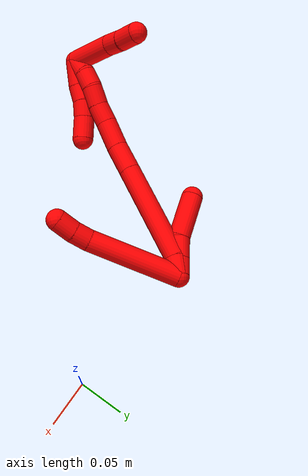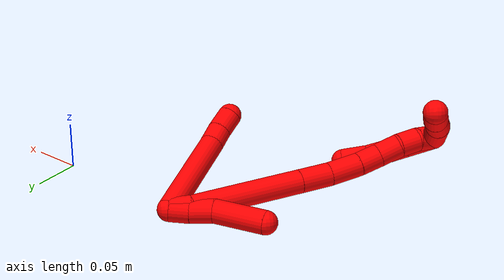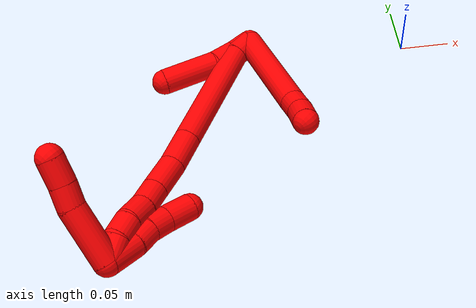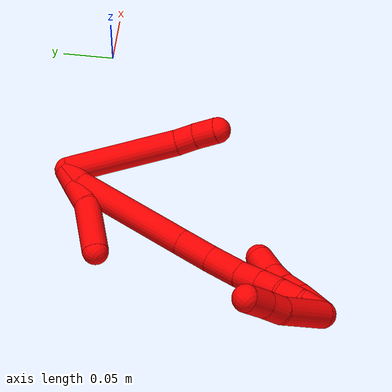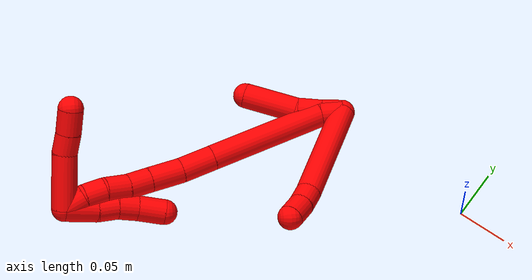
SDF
<sdf version="1.7">
 <world name="default">
  <model name="2">
   <static>0</static>
   <link name="2">
    <collision name="collision-cylinder-e_1_2_8">
     <pose>-0.044066 -0.01993 0.023816 0.696808 -0.956901 -0.372399</pose>
     <geometry><cylinder><radius>0.0125</radius><length>0.107818</length></cylinder></geometry>
     <surface>
      <friction><ode><mu>1.16</mu><mu2>1.16</mu2><slip1>0</slip1><slip2>0</slip2></ode></friction>
      <contact><ode><kp>1e+06</kp><kd>1</kd><max_vel>0</max_vel><min_depth>0.001</min_depth></ode></contact>
     </surface>
    </collision>
    <visual name="visual-cylinder-e_1_2_8">
     <pose>-0.044066 -0.01993 0.023816 0.696808 -0.956901 -0.372399</pose>
     <geometry><cylinder><radius>0.0125</radius><length>0.107818</length></cylinder></geometry>
     <material><ambient>1 0 0 1</ambient></material>
    </visual>
    <collision name="collision-cylinder-e_2_8_9">
     <pose>-0.095126 -0.0452 0.052381 0.8438 -0.774656 -0.362194</pose>
     <geometry><cylinder><radius>0.0125</radius><length>0.02</length></cylinder></geometry>
     <surface>
      <friction><ode><mu>1.16</mu><mu2>1.16</mu2><slip1>0</slip1><slip2>0</slip2></ode></friction>
      <contact><ode><kp>1e+06</kp><kd>1</kd><max_vel>0</max_vel><min_depth>0.001</min_depth></ode></contact>
     </surface>
    </collision>
    <visual name="visual-cylinder-e_2_8_9">
     <pose>-0.095126 -0.0452 0.052381 0.8438 -0.774656 -0.362194</pose>
     <geometry><cylinder><radius>0.0125</radius><length>0.02</length></cylinder></geometry>
     <material><ambient>1 0 0 1</ambient></material>
    </visual>
    <collision name="collision-cylinder-e_3_9_6">
     <pose>-0.108833 -0.056737 0.06342 0.778076 -0.650006 -0.274516</pose>
     <geometry><cylinder><radius>0.0125</radius><length>0.022182</length></cylinder></geometry>
     <surface>
      <friction><ode><mu>1.16</mu><mu2>1.16</mu2><slip1>0</slip1><slip2>0</slip2></ode></friction>
      <contact><ode><kp>1e+06</kp><kd>1</kd><max_vel>0</max_vel><min_depth>0.001</min_depth></ode></contact>
     </surface>
    </collision>
    <visual name="visual-cylinder-e_3_9_6">
     <pose>-0.108833 -0.056737 0.06342 0.778076 -0.650006 -0.274516</pose>
     <geometry><cylinder><radius>0.0125</radius><length>0.022182</length></cylinder></geometry>
     <material><ambient>1 0 0 1</ambient></material>
    </visual>
    <collision name="collision-cylinder-e_1_2_10">
     <pose>0.001372 0.001295 0.010279 -0.125374 0.131711 -0.008279</pose>
     <geometry><cylinder><radius>0.0125</radius><length>0.020901</length></cylinder></geometry>
     <surface>
      <friction><ode><mu>1.16</mu><mu2>1.16</mu2><slip1>0</slip1><slip2>0</slip2></ode></friction>
      <contact><ode><kp>1e+06</kp><kd>1</kd><max_vel>0</max_vel><min_depth>0.001</min_depth></ode></contact>
     </surface>
    </collision>
    <visual name="visual-cylinder-e_1_2_10">
     <pose>0.001372 0.001295 0.010279 -0.125374 0.131711 -0.008279</pose>
     <geometry><cylinder><radius>0.0125</radius><length>0.020901</length></cylinder></geometry>
     <material><ambient>1 0 0 1</ambient></material>
    </visual>
    <collision name="collision-cylinder-e_2_10_11">
     <pose>0.004815 0.002696 0.032764 -0.0086 0.167995 -0.000724</pose>
     <geometry><cylinder><radius>0.0125</radius><length>0.024764</length></cylinder></geometry>
     <surface>
      <friction><ode><mu>1.16</mu><mu2>1.16</mu2><slip1>0</slip1><slip2>0</slip2></ode></friction>
      <contact><ode><kp>1e+06</kp><kd>1</kd><max_vel>0</max_vel><min_depth>0.001</min_depth></ode></contact>
     </surface>
    </collision>
    <visual name="visual-cylinder-e_2_10_11">
     <pose>0.004815 0.002696 0.032764 -0.0086 0.167995 -0.000724</pose>
     <geometry><cylinder><radius>0.0125</radius><length>0.024764</length></cylinder></geometry>
     <material><ambient>1 0 0 1</ambient></material>
    </visual>
    <collision name="collision-cylinder-e_3_11_5">
     <pose>0.017781 0.007124 0.06948 -0.174596 0.412663 -0.036634</pose>
     <geometry><cylinder><radius>0.0125</radius><length>0.054335</length></cylinder></geometry>
     <surface>
      <friction><ode><mu>1.16</mu><mu2>1.16</mu2><slip1>0</slip1><slip2>0</slip2></ode></friction>
      <contact><ode><kp>1e+06</kp><kd>1</kd><max_vel>0</max_vel><min_depth>0.001</min_depth></ode></contact>
     </surface>
    </collision>
    <visual name="visual-cylinder-e_3_11_5">
     <pose>0.017781 0.007124 0.06948 -0.174596 0.412663 -0.036634</pose>
     <geometry><cylinder><radius>0.0125</radius><length>0.054335</length></cylinder></geometry>
     <material><ambient>1 0 0 1</ambient></material>
    </visual>
    <collision name="collision-cylinder-e_1_2_12">
     <pose>-0.00025 -0.000142 0.011388 0.01249 -0.021928 -0.000137</pose>
     <geometry><cylinder><radius>0.0125</radius><length>0.022784</length></cylinder></geometry>
     <surface>
      <friction><ode><mu>1.16</mu><mu2>1.16</mu2><slip1>0</slip1><slip2>0</slip2></ode></friction>
      <contact><ode><kp>1e+06</kp><kd>1</kd><max_vel>0</max_vel><min_depth>0.001</min_depth></ode></contact>
     </surface>
    </collision>
    <visual name="visual-cylinder-e_1_2_12">
     <pose>-0.00025 -0.000142 0.011388 0.01249 -0.021928 -0.000137</pose>
     <geometry><cylinder><radius>0.0125</radius><length>0.022784</length></cylinder></geometry>
     <material><ambient>1 0 0 1</ambient></material>
    </visual>
    <collision name="collision-cylinder-e_2_12_13">
     <pose>-0.018934 -0.003849 0.07879 0.063547 -0.317337 -0.010172</pose>
     <geometry><cylinder><radius>0.0125</radius><length>0.118152</length></cylinder></geometry>
     <surface>
      <friction><ode><mu>1.16</mu><mu2>1.16</mu2><slip1>0</slip1><slip2>0</slip2></ode></friction>
      <contact><ode><kp>1e+06</kp><kd>1</kd><max_vel>0</max_vel><min_depth>0.001</min_depth></ode></contact>
     </surface>
    </collision>
    <visual name="visual-cylinder-e_2_12_13">
     <pose>-0.018934 -0.003849 0.07879 0.063547 -0.317337 -0.010172</pose>
     <geometry><cylinder><radius>0.0125</radius><length>0.118152</length></cylinder></geometry>
     <material><ambient>1 0 0 1</ambient></material>
    </visual>
    <collision name="collision-cylinder-e_3_13_14">
     <pose>-0.042689 -0.008459 0.150837 0.065127 -0.319794 -0.010507</pose>
     <geometry><cylinder><radius>0.0125</radius><length>0.033853</length></cylinder></geometry>
     <surface>
      <friction><ode><mu>1.16</mu><mu2>1.16</mu2><slip1>0</slip1><slip2>0</slip2></ode></friction>
      <contact><ode><kp>1e+06</kp><kd>1</kd><max_vel>0</max_vel><min_depth>0.001</min_depth></ode></contact>
     </surface>
    </collision>
    <visual name="visual-cylinder-e_3_13_14">
     <pose>-0.042689 -0.008459 0.150837 0.065127 -0.319794 -0.010507</pose>
     <geometry><cylinder><radius>0.0125</radius><length>0.033853</length></cylinder></geometry>
     <material><ambient>1 0 0 1</ambient></material>
    </visual>
    <collision name="collision-cylinder-e_4_14_15">
     <pose>-0.052159 -0.012456 0.183019 0.180764 -0.247564 -0.022551</pose>
     <geometry><cylinder><radius>0.0125</radius><length>0.033863</length></cylinder></geometry>
     <surface>
      <friction><ode><mu>1.16</mu><mu2>1.16</mu2><slip1>0</slip1><slip2>0</slip2></ode></friction>
      <contact><ode><kp>1e+06</kp><kd>1</kd><max_vel>0</max_vel><min_depth>0.001</min_depth></ode></contact>
     </surface>
    </collision>
    <visual name="visual-cylinder-e_4_14_15">
     <pose>-0.052159 -0.012456 0.183019 0.180764 -0.247564 -0.022551</pose>
     <geometry><cylinder><radius>0.0125</radius><length>0.033863</length></cylinder></geometry>
     <material><ambient>1 0 0 1</ambient></material>
    </visual>
    <collision name="collision-cylinder-e_5_15_16">
     <pose>-0.059516 -0.018493 0.210066 0.275929 -0.275995 -0.038561</pose>
     <geometry><cylinder><radius>0.0125</radius><length>0.023546</length></cylinder></geometry>
     <surface>
      <friction><ode><mu>1.16</mu><mu2>1.16</mu2><slip1>0</slip1><slip2>0</slip2></ode></friction>
      <contact><ode><kp>1e+06</kp><kd>1</kd><max_vel>0</max_vel><min_depth>0.001</min_depth></ode></contact>
     </surface>
    </collision>
    <visual name="visual-cylinder-e_5_15_16">
     <pose>-0.059516 -0.018493 0.210066 0.275929 -0.275995 -0.038561</pose>
     <geometry><cylinder><radius>0.0125</radius><length>0.023546</length></cylinder></geometry>
     <material><ambient>1 0 0 1</ambient></material>
    </visual>
    <collision name="collision-cylinder-e_6_16_17">
     <pose>-0.064328 -0.025726 0.232201 0.35358 -0.133137 -0.02382</pose>
     <geometry><cylinder><radius>0.0125</radius><length>0.024169</length></cylinder></geometry>
     <surface>
      <friction><ode><mu>1.16</mu><mu2>1.16</mu2><slip1>0</slip1><slip2>0</slip2></ode></friction>
      <contact><ode><kp>1e+06</kp><kd>1</kd><max_vel>0</max_vel><min_depth>0.001</min_depth></ode></contact>
     </surface>
    </collision>
    <visual name="visual-cylinder-e_6_16_17">
     <pose>-0.064328 -0.025726 0.232201 0.35358 -0.133137 -0.02382</pose>
     <geometry><cylinder><radius>0.0125</radius><length>0.024169</length></cylinder></geometry>
     <material><ambient>1 0 0 1</ambient></material>
    </visual>
    <collision name="collision-cylinder-e_7_17_18">
     <pose>-0.068904 -0.031587 0.253486 0.168909 -0.28363 -0.024172</pose>
     <geometry><cylinder><radius>0.0125</radius><length>0.021235</length></cylinder></geometry>
     <surface>
      <friction><ode><mu>1.16</mu><mu2>1.16</mu2><slip1>0</slip1><slip2>0</slip2></ode></friction>
      <contact><ode><kp>1e+06</kp><kd>1</kd><max_vel>0</max_vel><min_depth>0.001</min_depth></ode></contact>
     </surface>
    </collision>
    <visual name="visual-cylinder-e_7_17_18">
     <pose>-0.068904 -0.031587 0.253486 0.168909 -0.28363 -0.024172</pose>
     <geometry><cylinder><radius>0.0125</radius><length>0.021235</length></cylinder></geometry>
     <material><ambient>1 0 0 1</ambient></material>
    </visual>
    <collision name="collision-cylinder-e_8_18_1">
     <pose>-0.076697 -0.032578 0.273616 -0.071572 -0.44518 0.016206</pose>
     <geometry><cylinder><radius>0.0125</radius><length>0.022399</length></cylinder></geometry>
     <surface>
      <friction><ode><mu>1.16</mu><mu2>1.16</mu2><slip1>0</slip1><slip2>0</slip2></ode></friction>
      <contact><ode><kp>1e+06</kp><kd>1</kd><max_vel>0</max_vel><min_depth>0.001</min_depth></ode></contact>
     </surface>
    </collision>
    <visual name="visual-cylinder-e_8_18_1">
     <pose>-0.076697 -0.032578 0.273616 -0.071572 -0.44518 0.016206</pose>
     <geometry><cylinder><radius>0.0125</radius><length>0.022399</length></cylinder></geometry>
     <material><ambient>1 0 0 1</ambient></material>
    </visual>
    <collision name="collision-cylinder-e_1_1_19">
     <pose>-0.082352 -0.027843 0.268068 -2.89031 -0.051494 0.402271</pose>
     <geometry><cylinder><radius>0.0125</radius><length>0.032316</length></cylinder></geometry>
     <surface>
      <friction><ode><mu>1.16</mu><mu2>1.16</mu2><slip1>0</slip1><slip2>0</slip2></ode></friction>
      <contact><ode><kp>1e+06</kp><kd>1</kd><max_vel>0</max_vel><min_depth>0.001</min_depth></ode></contact>
     </surface>
    </collision>
    <visual name="visual-cylinder-e_1_1_19">
     <pose>-0.082352 -0.027843 0.268068 -2.89031 -0.051494 0.402271</pose>
     <geometry><cylinder><radius>0.0125</radius><length>0.032316</length></cylinder></geometry>
     <material><ambient>1 0 0 1</ambient></material>
    </visual>
    <collision name="collision-cylinder-e_2_19_20">
     <pose>-0.082124 -0.021795 0.242559 -2.93836 0.104684 -0.949241</pose>
     <geometry><cylinder><radius>0.0125</radius><length>0.020284</length></cylinder></geometry>
     <surface>
      <friction><ode><mu>1.16</mu><mu2>1.16</mu2><slip1>0</slip1><slip2>0</slip2></ode></friction>
      <contact><ode><kp>1e+06</kp><kd>1</kd><max_vel>0</max_vel><min_depth>0.001</min_depth></ode></contact>
     </surface>
    </collision>
    <visual name="visual-cylinder-e_2_19_20">
     <pose>-0.082124 -0.021795 0.242559 -2.93836 0.104684 -0.949241</pose>
     <geometry><cylinder><radius>0.0125</radius><length>0.020284</length></cylinder></geometry>
     <material><ambient>1 0 0 1</ambient></material>
    </visual>
    <collision name="collision-cylinder-e_3_20_21">
     <pose>-0.082161 -0.0173 0.222932 -2.89448 -0.108677 0.825628</pose>
     <geometry><cylinder><radius>0.0125</radius><length>0.020228</length></cylinder></geometry>
     <surface>
      <friction><ode><mu>1.16</mu><mu2>1.16</mu2><slip1>0</slip1><slip2>0</slip2></ode></friction>
      <contact><ode><kp>1e+06</kp><kd>1</kd><max_vel>0</max_vel><min_depth>0.001</min_depth></ode></contact>
     </surface>
    </collision>
    <visual name="visual-cylinder-e_3_20_21">
     <pose>-0.082161 -0.0173 0.222932 -2.89448 -0.108677 0.825628</pose>
     <geometry><cylinder><radius>0.0125</radius><length>0.020228</length></cylinder></geometry>
     <material><ambient>1 0 0 1</ambient></material>
    </visual>
    <collision name="collision-cylinder-e_4_21_4">
     <pose>-0.085991 -0.012858 0.200023 -2.99205 -0.202551 1.87115</pose>
     <geometry><cylinder><radius>0.0125</radius><length>0.027172</length></cylinder></geometry>
     <surface>
      <friction><ode><mu>1.16</mu><mu2>1.16</mu2><slip1>0</slip1><slip2>0</slip2></ode></friction>
      <contact><ode><kp>1e+06</kp><kd>1</kd><max_vel>0</max_vel><min_depth>0.001</min_depth></ode></contact>
     </surface>
    </collision>
    <visual name="visual-cylinder-e_4_21_4">
     <pose>-0.085991 -0.012858 0.200023 -2.99205 -0.202551 1.87115</pose>
     <geometry><cylinder><radius>0.0125</radius><length>0.027172</length></cylinder></geometry>
     <material><ambient>1 0 0 1</ambient></material>
    </visual>
    <collision name="collision-cylinder-e_1_1_22">
     <pose>-0.057112 -0.044236 0.281192 1.77052 1.09323 1.27926</pose>
     <geometry><cylinder><radius>0.0125</radius><length>0.054966</length></cylinder></geometry>
     <surface>
      <friction><ode><mu>1.16</mu><mu2>1.16</mu2><slip1>0</slip1><slip2>0</slip2></ode></friction>
      <contact><ode><kp>1e+06</kp><kd>1</kd><max_vel>0</max_vel><min_depth>0.001</min_depth></ode></contact>
     </surface>
    </collision>
    <visual name="visual-cylinder-e_1_1_22">
     <pose>-0.057112 -0.044236 0.281192 1.77052 1.09323 1.27926</pose>
     <geometry><cylinder><radius>0.0125</radius><length>0.054966</length></cylinder></geometry>
     <material><ambient>1 0 0 1</ambient></material>
    </visual>
    <collision name="collision-cylinder-e_2_22_23">
     <pose>-0.024392 -0.062213 0.27601 2.01666 0.929653 1.34398</pose>
     <geometry><cylinder><radius>0.0125</radius><length>0.020744</length></cylinder></geometry>
     <surface>
      <friction><ode><mu>1.16</mu><mu2>1.16</mu2><slip1>0</slip1><slip2>0</slip2></ode></friction>
      <contact><ode><kp>1e+06</kp><kd>1</kd><max_vel>0</max_vel><min_depth>0.001</min_depth></ode></contact>
     </surface>
    </collision>
    <visual name="visual-cylinder-e_2_22_23">
     <pose>-0.024392 -0.062213 0.27601 2.01666 0.929653 1.34398</pose>
     <geometry><cylinder><radius>0.0125</radius><length>0.020744</length></cylinder></geometry>
     <material><ambient>1 0 0 1</ambient></material>
    </visual>
    <collision name="collision-cylinder-e_3_23_3">
     <pose>-0.006132 -0.074462 0.271258 1.87346 0.959765 1.23184</pose>
     <geometry><cylinder><radius>0.0125</radius><length>0.02429</length></cylinder></geometry>
     <surface>
      <friction><ode><mu>1.16</mu><mu2>1.16</mu2><slip1>0</slip1><slip2>0</slip2></ode></friction>
      <contact><ode><kp>1e+06</kp><kd>1</kd><max_vel>0</max_vel><min_depth>0.001</min_depth></ode></contact>
     </surface>
    </collision>
    <visual name="visual-cylinder-e_3_23_3">
     <pose>-0.006132 -0.074462 0.271258 1.87346 0.959765 1.23184</pose>
     <geometry><cylinder><radius>0.0125</radius><length>0.02429</length></cylinder></geometry>
     <material><ambient>1 0 0 1</ambient></material>
    </visual>
    <collision name="collision-sphere-3">
     <pose>0.003815 -0.081113 0.269181 0 -0 0</pose>
     <geometry><sphere><radius>0.0125</radius></sphere></geometry>
     <surface>
      <friction><ode><mu>1.16</mu><mu2>1.16</mu2><slip1>0</slip1><slip2>0</slip2></ode></friction>
      <contact><ode><kp>1e+06</kp><kd>1</kd><max_vel>0</max_vel><min_depth>0.001</min_depth></ode></contact>
     </surface>
    </collision>
    <visual name="visual-sphere-3">
     <pose>0.003815 -0.081113 0.269181 0 -0 0</pose>
     <geometry><sphere><radius>0.0125</radius></sphere></geometry>
     <material><ambient>1 0 0 1</ambient></material>
    </visual>
    <collision name="collision-sphere-23">
     <pose>-0.01608 -0.06781 0.273335 0 -0 0</pose>
     <geometry><sphere><radius>0.0125</radius></sphere></geometry>
     <surface>
      <friction><ode><mu>1.16</mu><mu2>1.16</mu2><slip1>0</slip1><slip2>0</slip2></ode></friction>
      <contact><ode><kp>1e+06</kp><kd>1</kd><max_vel>0</max_vel><min_depth>0.001</min_depth></ode></contact>
     </surface>
    </collision>
    <visual name="visual-sphere-23">
     <pose>-0.01608 -0.06781 0.273335 0 -0 0</pose>
     <geometry><sphere><radius>0.0125</radius></sphere></geometry>
     <material><ambient>1 0 0 1</ambient></material>
    </visual>
    <collision name="collision-sphere-22">
     <pose>-0.032704 -0.056616 0.278685 0 -0 0</pose>
     <geometry><sphere><radius>0.0125</radius></sphere></geometry>
     <surface>
      <friction><ode><mu>1.16</mu><mu2>1.16</mu2><slip1>0</slip1><slip2>0</slip2></ode></friction>
      <contact><ode><kp>1e+06</kp><kd>1</kd><max_vel>0</max_vel><min_depth>0.001</min_depth></ode></contact>
     </surface>
    </collision>
    <visual name="visual-sphere-22">
     <pose>-0.032704 -0.056616 0.278685 0 -0 0</pose>
     <geometry><sphere><radius>0.0125</radius></sphere></geometry>
     <material><ambient>1 0 0 1</ambient></material>
    </visual>
    <collision name="collision-sphere-4">
     <pose>-0.088724 -0.010875 0.186863 0 -0 0</pose>
     <geometry><sphere><radius>0.0125</radius></sphere></geometry>
     <surface>
      <friction><ode><mu>1.16</mu><mu2>1.16</mu2><slip1>0</slip1><slip2>0</slip2></ode></friction>
      <contact><ode><kp>1e+06</kp><kd>1</kd><max_vel>0</max_vel><min_depth>0.001</min_depth></ode></contact>
     </surface>
    </collision>
    <visual name="visual-sphere-4">
     <pose>-0.088724 -0.010875 0.186863 0 -0 0</pose>
     <geometry><sphere><radius>0.0125</radius></sphere></geometry>
     <material><ambient>1 0 0 1</ambient></material>
    </visual>
    <collision name="collision-sphere-21">
     <pose>-0.083258 -0.01484 0.213183 0 -0 0</pose>
     <geometry><sphere><radius>0.0125</radius></sphere></geometry>
     <surface>
      <friction><ode><mu>1.16</mu><mu2>1.16</mu2><slip1>0</slip1><slip2>0</slip2></ode></friction>
      <contact><ode><kp>1e+06</kp><kd>1</kd><max_vel>0</max_vel><min_depth>0.001</min_depth></ode></contact>
     </surface>
    </collision>
    <visual name="visual-sphere-21">
     <pose>-0.083258 -0.01484 0.213183 0 -0 0</pose>
     <geometry><sphere><radius>0.0125</radius></sphere></geometry>
     <material><ambient>1 0 0 1</ambient></material>
    </visual>
    <collision name="collision-sphere-20">
     <pose>-0.081064 -0.019759 0.232681 0 -0 0</pose>
     <geometry><sphere><radius>0.0125</radius></sphere></geometry>
     <surface>
      <friction><ode><mu>1.16</mu><mu2>1.16</mu2><slip1>0</slip1><slip2>0</slip2></ode></friction>
      <contact><ode><kp>1e+06</kp><kd>1</kd><max_vel>0</max_vel><min_depth>0.001</min_depth></ode></contact>
     </surface>
    </collision>
    <visual name="visual-sphere-20">
     <pose>-0.081064 -0.019759 0.232681 0 -0 0</pose>
     <geometry><sphere><radius>0.0125</radius></sphere></geometry>
     <material><ambient>1 0 0 1</ambient></material>
    </visual>
    <collision name="collision-sphere-11">
     <pose>0.006886 0.002801 0.044972 0 -0 0</pose>
     <geometry><sphere><radius>0.0125</radius></sphere></geometry>
     <surface>
      <friction><ode><mu>1.16</mu><mu2>1.16</mu2><slip1>0</slip1><slip2>0</slip2></ode></friction>
      <contact><ode><kp>1e+06</kp><kd>1</kd><max_vel>0</max_vel><min_depth>0.001</min_depth></ode></contact>
     </surface>
    </collision>
    <visual name="visual-sphere-11">
     <pose>0.006886 0.002801 0.044972 0 -0 0</pose>
     <geometry><sphere><radius>0.0125</radius></sphere></geometry>
     <material><ambient>1 0 0 1</ambient></material>
    </visual>
    <collision name="collision-sphere-10">
     <pose>0.002745 0.002591 0.020557 0 -0 0</pose>
     <geometry><sphere><radius>0.0125</radius></sphere></geometry>
     <surface>
      <friction><ode><mu>1.16</mu><mu2>1.16</mu2><slip1>0</slip1><slip2>0</slip2></ode></friction>
      <contact><ode><kp>1e+06</kp><kd>1</kd><max_vel>0</max_vel><min_depth>0.001</min_depth></ode></contact>
     </surface>
    </collision>
    <visual name="visual-sphere-10">
     <pose>0.002745 0.002591 0.020557 0 -0 0</pose>
     <geometry><sphere><radius>0.0125</radius></sphere></geometry>
     <material><ambient>1 0 0 1</ambient></material>
    </visual>
    <collision name="collision-sphere-6">
     <pose>-0.115545 -0.062934 0.069709 0 -0 0</pose>
     <geometry><sphere><radius>0.0125</radius></sphere></geometry>
     <surface>
      <friction><ode><mu>1.16</mu><mu2>1.16</mu2><slip1>0</slip1><slip2>0</slip2></ode></friction>
      <contact><ode><kp>1e+06</kp><kd>1</kd><max_vel>0</max_vel><min_depth>0.001</min_depth></ode></contact>
     </surface>
    </collision>
    <visual name="visual-sphere-6">
     <pose>-0.115545 -0.062934 0.069709 0 -0 0</pose>
     <geometry><sphere><radius>0.0125</radius></sphere></geometry>
     <material><ambient>1 0 0 1</ambient></material>
    </visual>
    <collision name="collision-sphere-9">
     <pose>-0.102121 -0.050539 0.057131 0 -0 0</pose>
     <geometry><sphere><radius>0.0125</radius></sphere></geometry>
     <surface>
      <friction><ode><mu>1.16</mu><mu2>1.16</mu2><slip1>0</slip1><slip2>0</slip2></ode></friction>
      <contact><ode><kp>1e+06</kp><kd>1</kd><max_vel>0</max_vel><min_depth>0.001</min_depth></ode></contact>
     </surface>
    </collision>
    <visual name="visual-sphere-9">
     <pose>-0.102121 -0.050539 0.057131 0 -0 0</pose>
     <geometry><sphere><radius>0.0125</radius></sphere></geometry>
     <material><ambient>1 0 0 1</ambient></material>
    </visual>
    <collision name="collision-sphere-2">
     <geometry><sphere><radius>0.0125</radius></sphere></geometry>
     <surface>
      <friction><ode><mu>1.16</mu><mu2>1.16</mu2><slip1>0</slip1><slip2>0</slip2></ode></friction>
      <contact><ode><kp>1e+06</kp><kd>1</kd><max_vel>0</max_vel><min_depth>0.001</min_depth></ode></contact>
     </surface>
    </collision>
    <visual name="visual-sphere-2">
     <geometry><sphere><radius>0.0125</radius></sphere></geometry>
     <material><ambient>1 0 0 1</ambient></material>
    </visual>
    <collision name="collision-sphere-19">
     <pose>-0.083183 -0.02383 0.252438 0 -0 0</pose>
     <geometry><sphere><radius>0.0125</radius></sphere></geometry>
     <surface>
      <friction><ode><mu>1.16</mu><mu2>1.16</mu2><slip1>0</slip1><slip2>0</slip2></ode></friction>
      <contact><ode><kp>1e+06</kp><kd>1</kd><max_vel>0</max_vel><min_depth>0.001</min_depth></ode></contact>
     </surface>
    </collision>
    <visual name="visual-sphere-19">
     <pose>-0.083183 -0.02383 0.252438 0 -0 0</pose>
     <geometry><sphere><radius>0.0125</radius></sphere></geometry>
     <material><ambient>1 0 0 1</ambient></material>
    </visual>
    <collision name="collision-sphere-8">
     <pose>-0.088131 -0.03986 0.047631 0 -0 0</pose>
     <geometry><sphere><radius>0.0125</radius></sphere></geometry>
     <surface>
      <friction><ode><mu>1.16</mu><mu2>1.16</mu2><slip1>0</slip1><slip2>0</slip2></ode></friction>
      <contact><ode><kp>1e+06</kp><kd>1</kd><max_vel>0</max_vel><min_depth>0.001</min_depth></ode></contact>
     </surface>
    </collision>
    <visual name="visual-sphere-8">
     <pose>-0.088131 -0.03986 0.047631 0 -0 0</pose>
     <geometry><sphere><radius>0.0125</radius></sphere></geometry>
     <material><ambient>1 0 0 1</ambient></material>
    </visual>
    <collision name="collision-sphere-5">
     <pose>0.028677 0.011447 0.093989 0 -0 0</pose>
     <geometry><sphere><radius>0.0125</radius></sphere></geometry>
     <surface>
      <friction><ode><mu>1.16</mu><mu2>1.16</mu2><slip1>0</slip1><slip2>0</slip2></ode></friction>
      <contact><ode><kp>1e+06</kp><kd>1</kd><max_vel>0</max_vel><min_depth>0.001</min_depth></ode></contact>
     </surface>
    </collision>
    <visual name="visual-sphere-5">
     <pose>0.028677 0.011447 0.093989 0 -0 0</pose>
     <geometry><sphere><radius>0.0125</radius></sphere></geometry>
     <material><ambient>1 0 0 1</ambient></material>
    </visual>
    <collision name="collision-sphere-12">
     <pose>-0.0005 -0.000285 0.022776 0 -0 0</pose>
     <geometry><sphere><radius>0.0125</radius></sphere></geometry>
     <surface>
      <friction><ode><mu>1.16</mu><mu2>1.16</mu2><slip1>0</slip1><slip2>0</slip2></ode></friction>
      <contact><ode><kp>1e+06</kp><kd>1</kd><max_vel>0</max_vel><min_depth>0.001</min_depth></ode></contact>
     </surface>
    </collision>
    <visual name="visual-sphere-12">
     <pose>-0.0005 -0.000285 0.022776 0 -0 0</pose>
     <geometry><sphere><radius>0.0125</radius></sphere></geometry>
     <material><ambient>1 0 0 1</ambient></material>
    </visual>
    <collision name="collision-sphere-13">
     <pose>-0.037368 -0.007413 0.134803 0 -0 0</pose>
     <geometry><sphere><radius>0.0125</radius></sphere></geometry>
     <surface>
      <friction><ode><mu>1.16</mu><mu2>1.16</mu2><slip1>0</slip1><slip2>0</slip2></ode></friction>
      <contact><ode><kp>1e+06</kp><kd>1</kd><max_vel>0</max_vel><min_depth>0.001</min_depth></ode></contact>
     </surface>
    </collision>
    <visual name="visual-sphere-13">
     <pose>-0.037368 -0.007413 0.134803 0 -0 0</pose>
     <geometry><sphere><radius>0.0125</radius></sphere></geometry>
     <material><ambient>1 0 0 1</ambient></material>
    </visual>
    <collision name="collision-sphere-14">
     <pose>-0.04801 -0.009505 0.166871 0 -0 0</pose>
     <geometry><sphere><radius>0.0125</radius></sphere></geometry>
     <surface>
      <friction><ode><mu>1.16</mu><mu2>1.16</mu2><slip1>0</slip1><slip2>0</slip2></ode></friction>
      <contact><ode><kp>1e+06</kp><kd>1</kd><max_vel>0</max_vel><min_depth>0.001</min_depth></ode></contact>
     </surface>
    </collision>
    <visual name="visual-sphere-14">
     <pose>-0.04801 -0.009505 0.166871 0 -0 0</pose>
     <geometry><sphere><radius>0.0125</radius></sphere></geometry>
     <material><ambient>1 0 0 1</ambient></material>
    </visual>
    <collision name="collision-sphere-15">
     <pose>-0.056308 -0.015407 0.199167 0 -0 0</pose>
     <geometry><sphere><radius>0.0125</radius></sphere></geometry>
     <surface>
      <friction><ode><mu>1.16</mu><mu2>1.16</mu2><slip1>0</slip1><slip2>0</slip2></ode></friction>
      <contact><ode><kp>1e+06</kp><kd>1</kd><max_vel>0</max_vel><min_depth>0.001</min_depth></ode></contact>
     </surface>
    </collision>
    <visual name="visual-sphere-15">
     <pose>-0.056308 -0.015407 0.199167 0 -0 0</pose>
     <geometry><sphere><radius>0.0125</radius></sphere></geometry>
     <material><ambient>1 0 0 1</ambient></material>
    </visual>
    <collision name="collision-sphere-16">
     <pose>-0.062724 -0.021579 0.220965 0 -0 0</pose>
     <geometry><sphere><radius>0.0125</radius></sphere></geometry>
     <surface>
      <friction><ode><mu>1.16</mu><mu2>1.16</mu2><slip1>0</slip1><slip2>0</slip2></ode></friction>
      <contact><ode><kp>1e+06</kp><kd>1</kd><max_vel>0</max_vel><min_depth>0.001</min_depth></ode></contact>
     </surface>
    </collision>
    <visual name="visual-sphere-16">
     <pose>-0.062724 -0.021579 0.220965 0 -0 0</pose>
     <geometry><sphere><radius>0.0125</radius></sphere></geometry>
     <material><ambient>1 0 0 1</ambient></material>
    </visual>
    <collision name="collision-sphere-17">
     <pose>-0.065932 -0.029874 0.243438 0 -0 0</pose>
     <geometry><sphere><radius>0.0125</radius></sphere></geometry>
     <surface>
      <friction><ode><mu>1.16</mu><mu2>1.16</mu2><slip1>0</slip1><slip2>0</slip2></ode></friction>
      <contact><ode><kp>1e+06</kp><kd>1</kd><max_vel>0</max_vel><min_depth>0.001</min_depth></ode></contact>
     </surface>
    </collision>
    <visual name="visual-sphere-17">
     <pose>-0.065932 -0.029874 0.243438 0 -0 0</pose>
     <geometry><sphere><radius>0.0125</radius></sphere></geometry>
     <material><ambient>1 0 0 1</ambient></material>
    </visual>
    <collision name="collision-sphere-18">
     <pose>-0.071875 -0.033301 0.263534 0 -0 0</pose>
     <geometry><sphere><radius>0.0125</radius></sphere></geometry>
     <surface>
      <friction><ode><mu>1.16</mu><mu2>1.16</mu2><slip1>0</slip1><slip2>0</slip2></ode></friction>
      <contact><ode><kp>1e+06</kp><kd>1</kd><max_vel>0</max_vel><min_depth>0.001</min_depth></ode></contact>
     </surface>
    </collision>
    <visual name="visual-sphere-18">
     <pose>-0.071875 -0.033301 0.263534 0 -0 0</pose>
     <geometry><sphere><radius>0.0125</radius></sphere></geometry>
     <material><ambient>1 0 0 1</ambient></material>
    </visual>
    <collision name="collision-sphere-1">
     <pose>-0.08152 -0.031855 0.283698 0 -0 0</pose>
     <geometry><sphere><radius>0.0125</radius></sphere></geometry>
     <surface>
      <friction><ode><mu>1.16</mu><mu2>1.16</mu2><slip1>0</slip1><slip2>0</slip2></ode></friction>
      <contact><ode><kp>1e+06</kp><kd>1</kd><max_vel>0</max_vel><min_depth>0.001</min_depth></ode></contact>
     </surface>
    </collision>
    <visual name="visual-sphere-1">
     <pose>-0.08152 -0.031855 0.283698 0 -0 0</pose>
     <geometry><sphere><radius>0.0125</radius></sphere></geometry>
     <material><ambient>1 0 0 1</ambient></material>
    </visual>
    <inertial>
     <pose>-0.04222 -0.020035 0.138751 0 -0 0</pose>
     <mass>0.75</mass>
     <inertia><ixx>0.000219</ixx><ixy>0</ixy><ixz>0</ixz><iyy>0.000269</iyy><iyz>0</iyz><izz>0.0002</izz></inertia>
    </inertial>
   </link>
   <pose>-0.155633 0.019651 0.012411 -1.5229 -0.220323 2.29542</pose>
  </model>
 </world>
</sdf>
